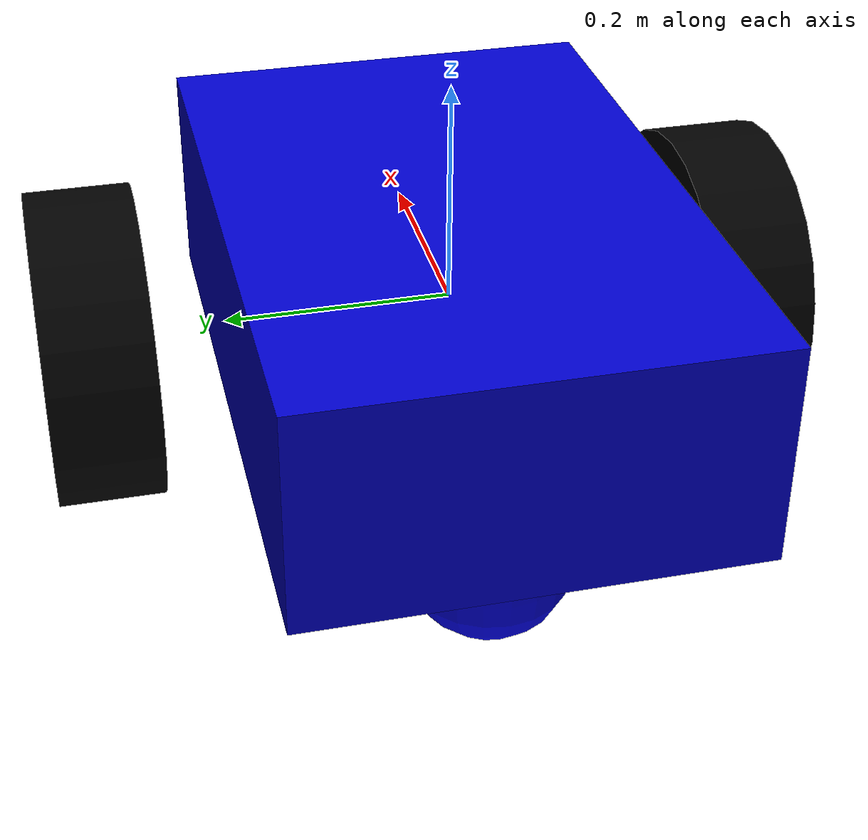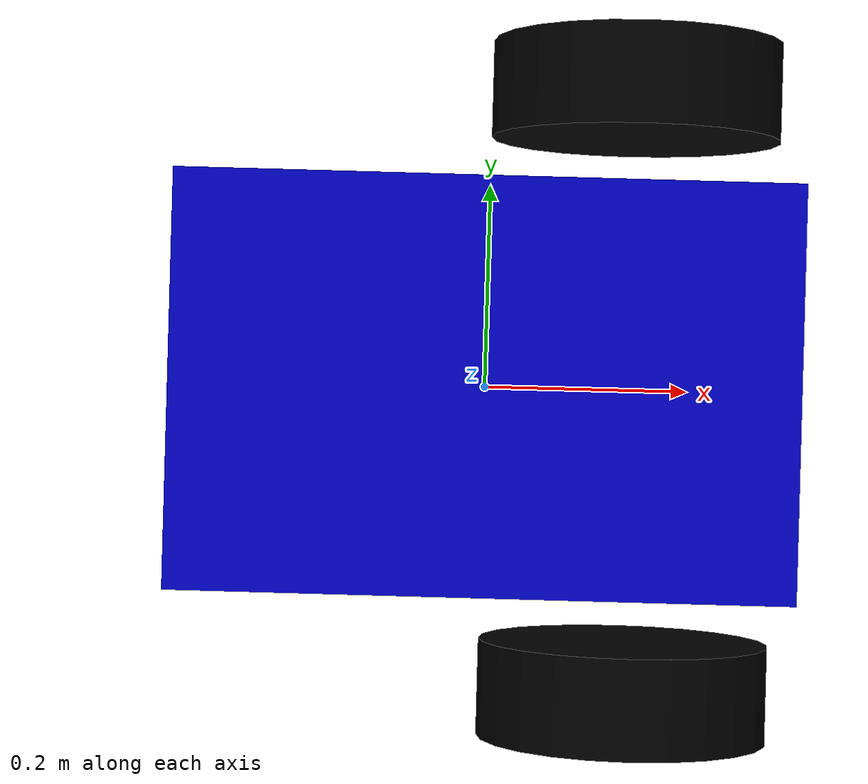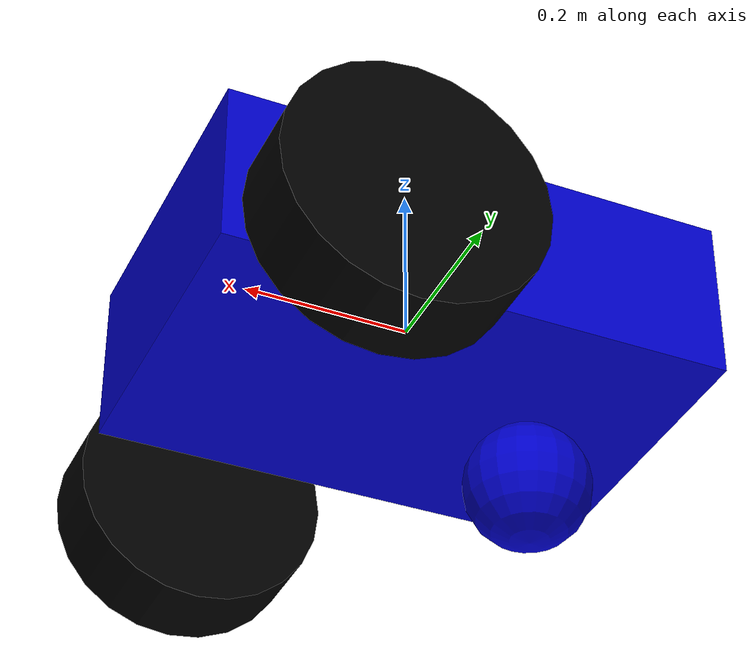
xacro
<?xml version="1.0"?>
<robot name="deedee" xmlns:xacro="http://ros.org/wiki/xacro">

  <material name="blue">
    <color rgba="0 0 0.8 1"/>
  </material>

  <material name="black">
    <color rgba="0 0 0 1"/>
  </material>

  <material name="white">
    <color rgba="1 1 1 1"/>
  </material>

  <!-- #################    MACROS     ##################### -->

  <xacro:property name="baseweight" value="2.0" />
  <xacro:property name="wheelweight" value="0.5" />
  <xacro:property name="castorweight" value="0.4" />
  <xacro:property name="basewidth" value="0.4" />
  <xacro:property name="baselength" value="0.6" />
  <xacro:property name="baseheight" value="0.2" />
  <xacro:property name="wheelwidth" value="0.1" />
  <xacro:property name="wheelradius" value="0.15" />
  <xacro:property name="castorradius" value="0.075" />
  <xacro:property name="pi" value="3.1415" />

  <!-- Inertia matrix macros -->
  <xacro:macro name="box_inertial" params="mass dx dy dz">
    <inertial>
      <mass value="${mass}" />
      <inertia ixx="${mass*((dy*dy)+(dz*dz))/3}"
               ixy="0.0"
               ixz="0.0"
               iyy="${mass*(dx*dx+dz*dz)/3}"
               iyz="0.0"
               izz="${mass*(dx*dx+dy*dy)/3}"
      />
    </inertial>
  </xacro:macro>

  <xacro:macro name="cylinder_inertial" params="mass radius height">
    <inertial>
      <mass value="${mass}" />
      <inertia ixx="${mass*radius*radius/2}"
               ixy="0.0"
               ixz="0.0"
               iyy="${mass*radius*radius/4 + height*height/3}"
               iyz="0.0"
               izz="${mass*radius*radius/4 + height*height/3}" />
    </inertial>
  </xacro:macro>

  <xacro:macro name="sphere_inertial" params="mass radius">
    <inertial>
      <mass value="${mass}" />
      <inertia ixx="${mass*2*radius*radius/3}"
               ixy="0.0"
               ixz="0.0"
               iyy="${mass*2*radius*radius/3}"
               iyz="0.0"
               izz="${mass*2*radius*radius/3}" />
    </inertial>
  </xacro:macro>

  <!-- Wheel macros -->
  <xacro:macro name="wheel" params="prefix side">

    <link name="${prefix}_wheel">
      <visual>
        <origin xyz="0 0 0" rpy="${pi/2} 0 0" />
        <geometry>
          <cylinder radius="${wheelradius}" length="${wheelwidth}"/>
        </geometry>
        <material name="black"/>
      </visual>
      <collision>
        <origin xyz="0 0 0" rpy="${pi/2} 0 0" />
        <geometry>
          <cylinder radius="${wheelradius}" length="${wheelwidth}"/>
        </geometry>
      </collision>
      <cylinder_inertial mass="${wheelweight}"
                         radius="${wheelradius}"
                         height="${wheelwidth}"/>
    </link>
    <gazebo reference="${prefix}_wheel">
      <mu1 value="200.0"/>
      <mu2 value="100.0"/>
      <kp value="10000000.0" />
      <kd value="1.0" />
      <material>Gazebo/Grey</material>
    </gazebo>

    <joint name="${prefix}_wheel_joint" type="continuous">
      <axis xyz="0 1 0" rpy="0 0 0" />
      <parent link="base_link"/>
      <child link="${prefix}_wheel"/>
      <origin xyz="${baselength/4}
                   ${side*(basewidth/2+wheelwidth+0.01)}
                   ${-baseheight/2}"
              rpy="0 0 0"
      />
      <limit effort="2000" velocity="4.0"/>
      <dynamics damping="0.3" friction="30.0"/>>
    </joint>
    <gazebo reference="${prefix}_wheel_joint">
      <dampingFactor>0.1</dampingFactor>
      <material>Gazebo/Grey</material>
    </gazebo>

    <transmission name="${prefix}_wheel_trans">
      <type>transmission_interface/SimpleTransmission</type>
      <actuator name="${prefix}_wheel_motor">
        <mechanicalReduction>1</mechanicalReduction>
      </actuator>
      <joint name="${prefix}_wheel_joint">
        <hardwareInterface>hardware_interface/VelocityJointInterface</hardwareInterface>
      </joint>
    </transmission>
  </xacro:macro>

  <!-- #################    DECLARATIONS     ##################### -->

  <!-- Main body -->
  <link name="base_link">
    <visual>
      <geometry>
        <box size="${baselength} ${basewidth} ${baseheight}"/>
      </geometry>
      <material name="blue"/>
    </visual>
    <collision>
      <geometry>
        <box size="${baselength} ${basewidth} ${baseheight}"/>
      </geometry>
    </collision>
    <box_inertial mass="${baseweight}"
                  dx="${baselength}"
                  dy="${basewidth}"
                  dz="${baseheight}"
    />
  </link>

  <!-- Castor wheel -->
  <link name="castor_link">
    <visual>
      <origin xyz="${-baselength/4} 0 ${-baseheight/2-castorradius}" rpy="0 0 0"/>
      <geometry>
        <sphere radius="${castorradius}"/>
      </geometry>
      <material name="blue"/>
    </visual>
    <collision>
      <origin xyz="${-baselength/4} 0 ${-baseheight/2-castorradius}" rpy="0 0 0"/>
      <geometry>
        <sphere radius="${castorradius}"/>
      </geometry>
    </collision>
    <sphere_inertial mass="${castorweight}"
                     radius="${castorradius}"
    />
  </link>
  <joint name="castor_joint" type="fixed">
    <axis xyz="0 0 0" rpy="0 0 0" />
    <parent link="base_link"/>
    <child link="castor_link"/>
    <origin xyz="0 0 0" rpy="0 0 0"/>
  </joint>
  <gazebo reference="castor_link">
    <mu1 value="0.0"/>
    <mu2 value="0.0"/>
  </gazebo>

  <!-- Wheels -->
  <wheel prefix="left" side="1"/>
  <wheel prefix="right" side="-1"/>

  <!-- ###############     Gazebo link     ############### -->

  <gazebo>
    <plugin name="gazebo_ros_control" filename="libgazebo_ros_control.so">
      <robotNamespace>/deedee</robotNamespace>
    </plugin>
  </gazebo>

</robot>
